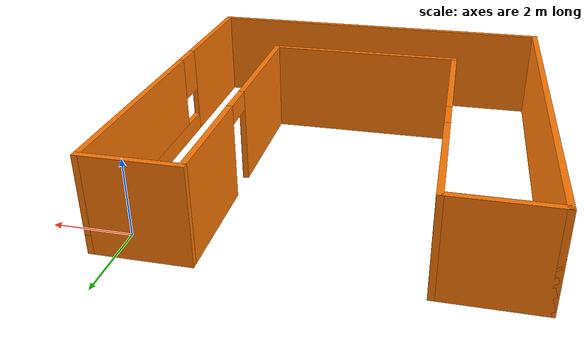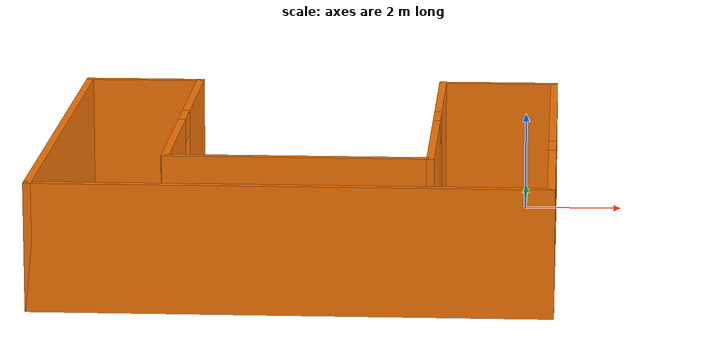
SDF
<?xml version='1.0'?>
<sdf version='1.6'>
  <model name='myBuilding'>
    <pose frame=''>-4.355 -4.12933 0 0 -0 0</pose>
    <link name='Wall_14'>
      <collision name='Wall_14_Collision'>
        <geometry>
          <box>
            <size>10 0.15 2.5</size>
          </box>
        </geometry>
        <pose frame=''>0 0 1.25 0 -0 0</pose>
      </collision>
      <visual name='Wall_14_Visual'>
        <pose frame=''>0 0 1.25 0 -0 0</pose>
        <geometry>
          <box>
            <size>10 0.15 2.5</size>
          </box>
        </geometry>
        <material>
          <script>
            <uri>file://media/materials/scripts/gazebo.material</uri>
            <name>Gazebo/Grey</name>
          </script>
          <ambient>0.996078 0.47451 0.0196078 1</ambient>
        </material>
        <meta>
          <layer>0</layer>
        </meta>
      </visual>
      <pose frame=''>-4.925 0 0 0 0 -1.5708</pose>
    </link>
    <link name='Wall_15'>
      <collision name='Wall_15_Collision'>
        <geometry>
          <box>
            <size>10 0.15 2.5</size>
          </box>
        </geometry>
        <pose frame=''>0 0 1.25 0 -0 0</pose>
      </collision>
      <visual name='Wall_15_Visual'>
        <pose frame=''>0 0 1.25 0 -0 0</pose>
        <geometry>
          <box>
            <size>10 0.15 2.5</size>
          </box>
        </geometry>
        <material>
          <script>
            <uri>file://media/materials/scripts/gazebo.material</uri>
            <name>Gazebo/Grey</name>
          </script>
          <ambient>0.996078 0.47451 0.0196078 1</ambient>
        </material>
        <meta>
          <layer>0</layer>
        </meta>
      </visual>
      <pose frame=''>0 -4.925 0 0 -0 0</pose>
    </link>
    <link name='Wall_16'>
      <pose frame=''>4.925 0 0 0 -0 1.5708</pose>
      <visual name='Wall_16_Visual_0'>
        <pose frame=''>-3.27575 0 1.25 0 -0 0</pose>
        <geometry>
          <box>
            <size>3.44849 0.15 2.5</size>
          </box>
        </geometry>
        <material>
          <script>
            <uri>file://media/materials/scripts/gazebo.material</uri>
            <name>Gazebo/Grey</name>
          </script>
          <ambient>0.996078 0.47451 0.0196078 1</ambient>
        </material>
        <meta>
          <layer>0</layer>
        </meta>
      </visual>
      <collision name='Wall_16_Collision_0'>
        <geometry>
          <box>
            <size>3.44849 0.15 2.5</size>
          </box>
        </geometry>
        <pose frame=''>-3.27575 0 1.25 0 -0 0</pose>
      </collision>
      <visual name='Wall_16_Visual_1'>
        <pose frame=''>1.72425 0 0.25 0 -0 0</pose>
        <geometry>
          <box>
            <size>6.55151 0.15 0.5</size>
          </box>
        </geometry>
        <material>
          <script>
            <uri>file://media/materials/scripts/gazebo.material</uri>
            <name>Gazebo/Grey</name>
          </script>
          <ambient>0.996078 0.47451 0.0196078 1</ambient>
        </material>
        <meta>
          <layer>0</layer>
        </meta>
      </visual>
      <collision name='Wall_16_Collision_1'>
        <geometry>
          <box>
            <size>6.55151 0.15 0.5</size>
          </box>
        </geometry>
        <pose frame=''>1.72425 0 0.25 0 -0 0</pose>
      </collision>
      <visual name='Wall_16_Visual_2'>
        <pose frame=''>2.12425 0 1.5 0 -0 0</pose>
        <geometry>
          <box>
            <size>5.75151 0.15 2</size>
          </box>
        </geometry>
        <material>
          <script>
            <uri>file://media/materials/scripts/gazebo.material</uri>
            <name>Gazebo/Grey</name>
          </script>
          <ambient>0.996078 0.47451 0.0196078 1</ambient>
        </material>
        <meta>
          <layer>0</layer>
        </meta>
      </visual>
      <collision name='Wall_16_Collision_2'>
        <geometry>
          <box>
            <size>5.75151 0.15 2</size>
          </box>
        </geometry>
        <pose frame=''>2.12425 0 1.5 0 -0 0</pose>
      </collision>
      <visual name='Wall_16_Visual_3'>
        <pose frame=''>-1.15151 0 1.9 0 -0 0</pose>
        <geometry>
          <box>
            <size>0.8 0.15 1.2</size>
          </box>
        </geometry>
        <material>
          <script>
            <uri>file://media/materials/scripts/gazebo.material</uri>
            <name>Gazebo/Grey</name>
          </script>
          <ambient>0.996078 0.47451 0.0196078 1</ambient>
        </material>
        <meta>
          <layer>0</layer>
        </meta>
      </visual>
      <collision name='Wall_16_Collision_3'>
        <geometry>
          <box>
            <size>0.8 0.15 1.2</size>
          </box>
        </geometry>
        <pose frame=''>-1.15151 0 1.9 0 -0 0</pose>
      </collision>
    </link>
    <link name='Wall_17'>
      <collision name='Wall_17_Collision'>
        <geometry>
          <box>
            <size>2.5 0.15 2.5</size>
          </box>
        </geometry>
        <pose frame=''>0 0 1.25 0 -0 0</pose>
      </collision>
      <visual name='Wall_17_Visual'>
        <pose frame=''>0 0 1.25 0 -0 0</pose>
        <geometry>
          <box>
            <size>2.5 0.15 2.5</size>
          </box>
        </geometry>
        <material>
          <script>
            <uri>file://media/materials/scripts/gazebo.material</uri>
            <name>Gazebo/Grey</name>
          </script>
          <ambient>0.996078 0.47451 0.0196078 1</ambient>
        </material>
        <meta>
          <layer>0</layer>
        </meta>
      </visual>
      <pose frame=''>3.75 4.925 0 0 -0 3.14159</pose>
    </link>
    <link name='Wall_18'>
      <pose frame=''>2.575 1.25 0 0 0 -1.5708</pose>
      <visual name='Wall_18_Visual_0'>
        <pose frame=''>-2.22674 0 1.25 0 -0 0</pose>
        <geometry>
          <box>
            <size>3.04652 0.15 2.5</size>
          </box>
        </geometry>
        <material>
          <script>
            <uri>file://media/materials/scripts/gazebo.material</uri>
            <name>Gazebo/Grey</name>
          </script>
          <ambient>0.996078 0.47451 0.0196078 1</ambient>
        </material>
        <meta>
          <layer>0</layer>
        </meta>
      </visual>
      <collision name='Wall_18_Collision_0'>
        <geometry>
          <box>
            <size>3.04652 0.15 2.5</size>
          </box>
        </geometry>
        <pose frame=''>-2.22674 0 1.25 0 -0 0</pose>
      </collision>
      <visual name='Wall_18_Visual_1'>
        <pose frame=''>1.97326 0 1.25 0 -0 0</pose>
        <geometry>
          <box>
            <size>3.55348 0.15 2.5</size>
          </box>
        </geometry>
        <material>
          <script>
            <uri>file://media/materials/scripts/gazebo.material</uri>
            <name>Gazebo/Grey</name>
          </script>
          <ambient>0.996078 0.47451 0.0196078 1</ambient>
        </material>
        <meta>
          <layer>0</layer>
        </meta>
      </visual>
      <collision name='Wall_18_Collision_1'>
        <geometry>
          <box>
            <size>3.55348 0.15 2.5</size>
          </box>
        </geometry>
        <pose frame=''>1.97326 0 1.25 0 -0 0</pose>
      </collision>
      <visual name='Wall_18_Visual_2'>
        <pose frame=''>-0.253482 0 2.25 0 -0 0</pose>
        <geometry>
          <box>
            <size>0.9 0.15 0.5</size>
          </box>
        </geometry>
        <material>
          <script>
            <uri>file://media/materials/scripts/gazebo.material</uri>
            <name>Gazebo/Grey</name>
          </script>
          <ambient>0.996078 0.47451 0.0196078 1</ambient>
        </material>
        <meta>
          <layer>0</layer>
        </meta>
      </visual>
      <collision name='Wall_18_Collision_2'>
        <geometry>
          <box>
            <size>0.9 0.15 0.5</size>
          </box>
        </geometry>
        <pose frame=''>-0.253482 0 2.25 0 -0 0</pose>
      </collision>
    </link>
    <link name='Wall_21'>
      <pose frame=''>-2.575 1.25 0 0 0 -1.5708</pose>
      <visual name='Wall_21_Visual_0'>
        <pose frame=''>-2.14629 0 1.25 0 -0 0</pose>
        <geometry>
          <box>
            <size>3.20743 0.15 2.5</size>
          </box>
        </geometry>
        <material>
          <script>
            <uri>file://media/materials/scripts/gazebo.material</uri>
            <name>Gazebo/Grey</name>
          </script>
          <ambient>0.996078 0.47451 0.0196078 1</ambient>
        </material>
        <meta>
          <layer>0</layer>
        </meta>
      </visual>
      <collision name='Wall_21_Collision_0'>
        <geometry>
          <box>
            <size>3.20743 0.15 2.5</size>
          </box>
        </geometry>
        <pose frame=''>-2.14629 0 1.25 0 -0 0</pose>
      </collision>
      <visual name='Wall_21_Visual_1'>
        <pose frame=''>2.05371 0 1.25 0 -0 0</pose>
        <geometry>
          <box>
            <size>3.39257 0.15 2.5</size>
          </box>
        </geometry>
        <material>
          <script>
            <uri>file://media/materials/scripts/gazebo.material</uri>
            <name>Gazebo/Grey</name>
          </script>
          <ambient>0.996078 0.47451 0.0196078 1</ambient>
        </material>
        <meta>
          <layer>0</layer>
        </meta>
      </visual>
      <collision name='Wall_21_Collision_1'>
        <geometry>
          <box>
            <size>3.39257 0.15 2.5</size>
          </box>
        </geometry>
        <pose frame=''>2.05371 0 1.25 0 -0 0</pose>
      </collision>
      <visual name='Wall_21_Visual_2'>
        <pose frame=''>-0.092574 0 2.25 0 -0 0</pose>
        <geometry>
          <box>
            <size>0.9 0.15 0.5</size>
          </box>
        </geometry>
        <material>
          <script>
            <uri>file://media/materials/scripts/gazebo.material</uri>
            <name>Gazebo/Grey</name>
          </script>
          <ambient>0.996078 0.47451 0.0196078 1</ambient>
        </material>
        <meta>
          <layer>0</layer>
        </meta>
      </visual>
      <collision name='Wall_21_Collision_2'>
        <geometry>
          <box>
            <size>0.9 0.15 0.5</size>
          </box>
        </geometry>
        <pose frame=''>-0.092574 0 2.25 0 -0 0</pose>
      </collision>
    </link>
    <link name='Wall_22'>
      <collision name='Wall_22_Collision'>
        <geometry>
          <box>
            <size>5.25 0.15 2.5</size>
          </box>
        </geometry>
        <pose frame=''>0 0 1.25 0 -0 0</pose>
      </collision>
      <visual name='Wall_22_Visual'>
        <pose frame=''>0 0 1.25 0 -0 0</pose>
        <geometry>
          <box>
            <size>5.25 0.15 2.5</size>
          </box>
        </geometry>
        <material>
          <script>
            <uri>file://media/materials/scripts/gazebo.material</uri>
            <name>Gazebo/Grey</name>
          </script>
          <ambient>0.996078 0.47451 0.0196078 1</ambient>
        </material>
        <meta>
          <layer>0</layer>
        </meta>
      </visual>
      <pose frame=''>-0.025 -2.425 0 0 -0 0</pose>
    </link>
    <link name='Wall_9'>
      <collision name='Wall_9_Collision'>
        <geometry>
          <box>
            <size>2.5 0.15 2.5</size>
          </box>
        </geometry>
        <pose frame=''>0 0 1.25 0 -0 0</pose>
      </collision>
      <visual name='Wall_9_Visual'>
        <pose frame=''>0 0 1.25 0 -0 0</pose>
        <geometry>
          <box>
            <size>2.5 0.15 2.5</size>
          </box>
        </geometry>
        <material>
          <script>
            <uri>file://media/materials/scripts/gazebo.material</uri>
            <name>Gazebo/Grey</name>
          </script>
          <ambient>0.996078 0.47451 0.0196078 1</ambient>
        </material>
        <meta>
          <layer>0</layer>
        </meta>
      </visual>
      <pose frame=''>-3.75 4.925 0 0 -0 0</pose>
    </link>
    <static>1</static>
  </model>
</sdf>
